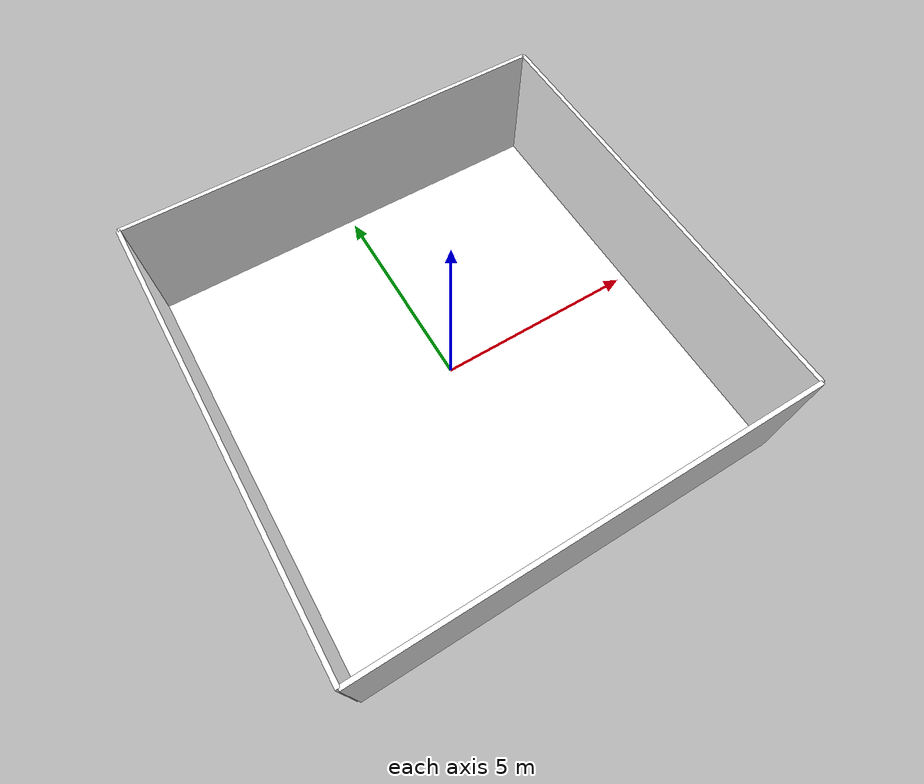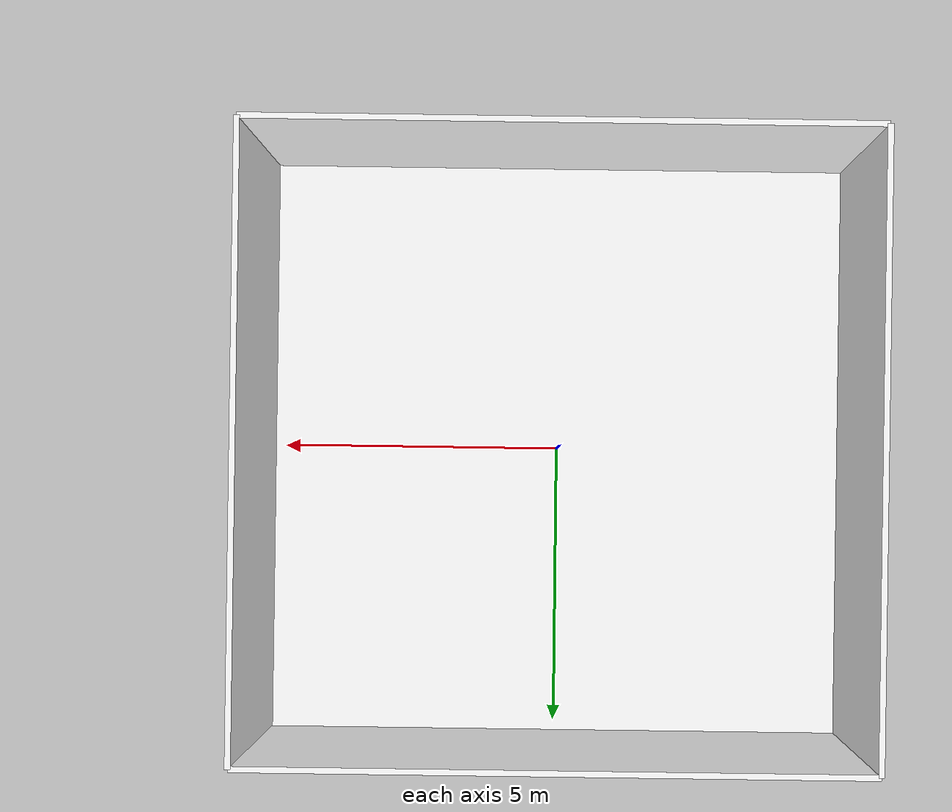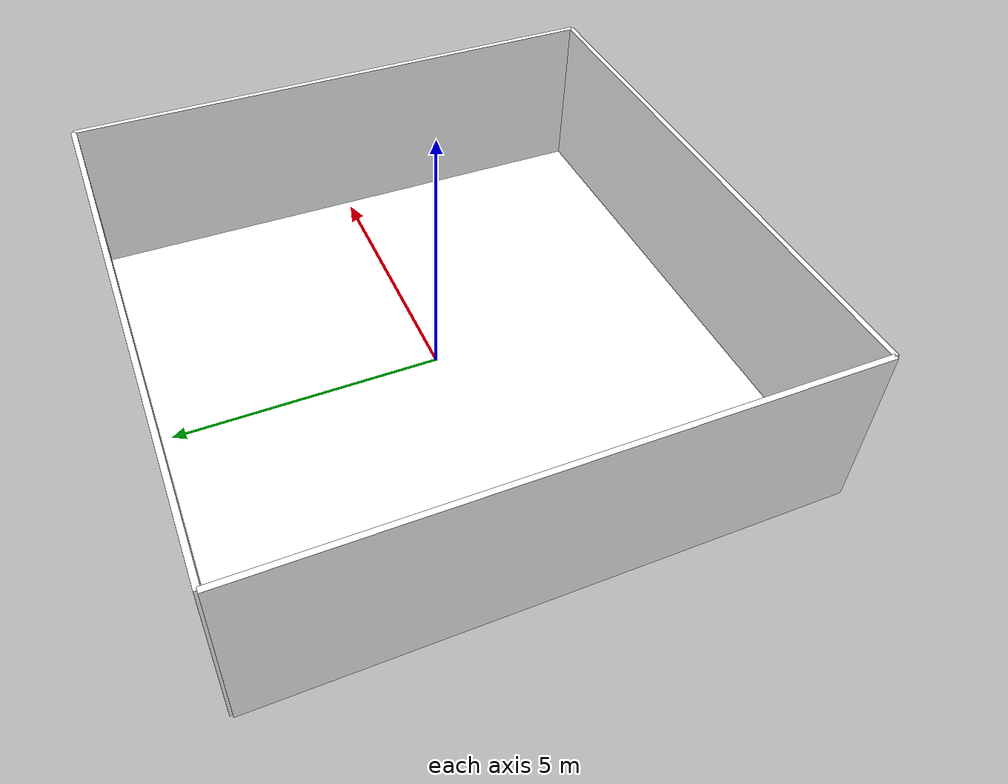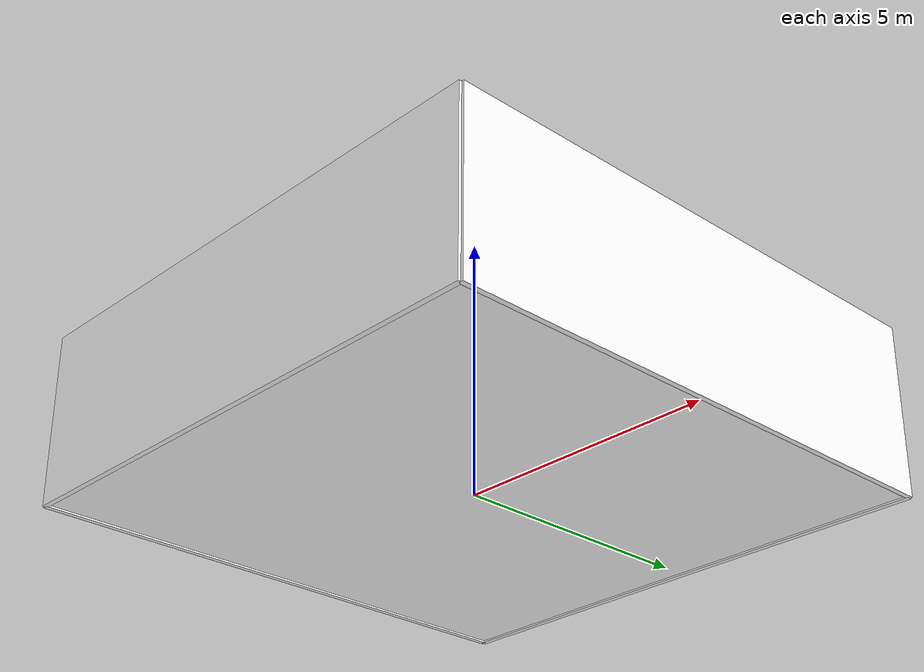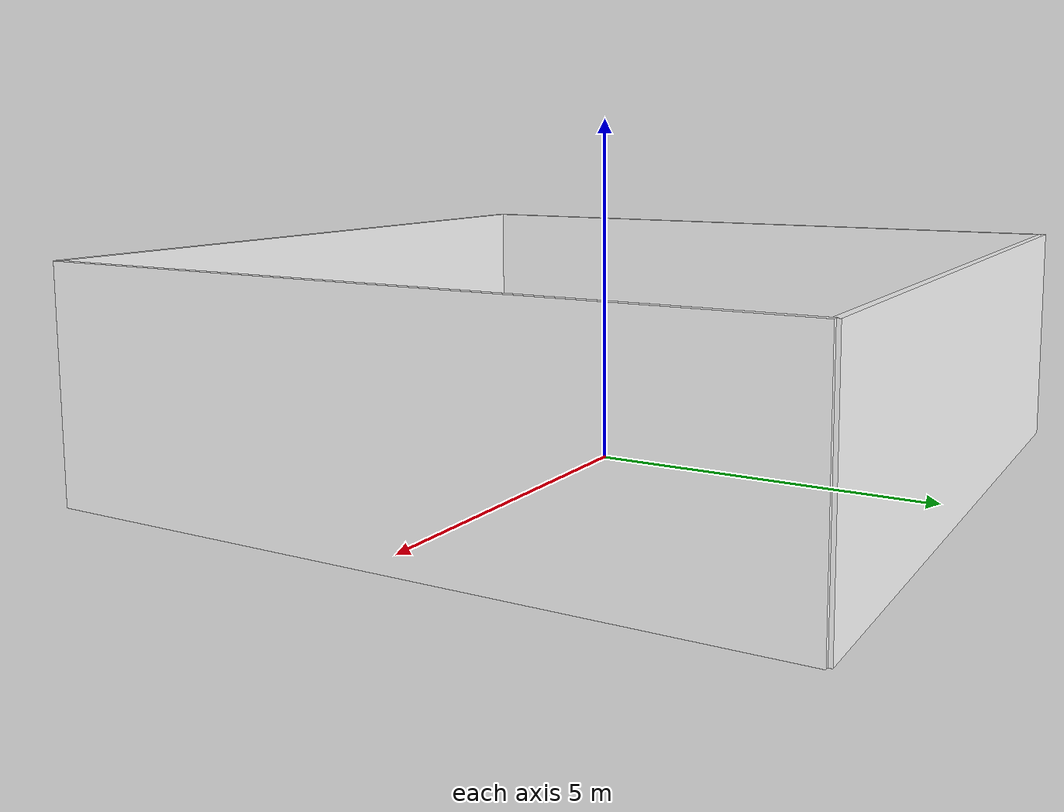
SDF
<?xml version="1.0" ?>
<sdf version="1.6">
  <model name="jamstec_pool">
    <include>
      <uri>model://pool_wall.sdf</uri>
      <static>true</static>
      <pose>5.25 0 0 0 0 1.57</pose>
      <name>pool_wall_n</name>
    </include>
    <include>
      <uri>model://pool_wall.sdf</uri>
      <static>true</static>
      <pose>-5.25 0 0 0 0 1.57</pose>
      <name>pool_wall_s</name>
    </include>
    <include>
      <uri>model://pool_wall.sdf</uri>
      <static>true</static>
      <pose>0 5.25 0 0 0 0</pose>
      <name>pool_wall_e</name>
    </include>
    <include>
      <uri>model://pool_wall.sdf</uri>
      <static>true</static>
      <pose>0 -5.25 0 0 0 0</pose>
      <name>pool_wall_w</name>
    </include>

    <link name="pool_grand_link">
      <pose>0.0 0 -0.05 0.0 0.0 0.0</pose>
      <collision name="wall_collision">
          <geometry>
            <box>
                <size>10.5 10.5 0.1</size>
            </box>
          </geometry>
      </collision>
      <visual name="pool_grand_visual">
        <geometry>
            <box>
                <size>10.5 10.5 0.1</size>
            </box>
        </geometry>
        <material>
          <diffuse>1.0 1.0 1.0</diffuse>
          <specular>1.0 1.0 1.0</specular>
          <pbr>
            <metal>
              <albedo_map>material/pool_grand.png</albedo_map>
              <normal_map>material/pool_grand.png</normal_map>
              <metalness_map>material/pool_grand.png</metalness_map>
              <roughness_map>material/pool_grand.png</roughness_map>
            </metal>
          </pbr>
          <script>
            <uri>material/</uri>
            <name>PoolGrandMaterial</name>
            <scale>1.0 0.1</scale>
          </script>
        </material>
      </visual>
    </link>
  </model>
</sdf>

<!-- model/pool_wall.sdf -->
<sdf version="1.6">
  <model name="pool_wall">
    <!-- weight -->
    <link name="pool_wall_link">
      <pose>0.0 0 1.515 0.0 0.0 0.0</pose>
      <collision name="wall_collision">
          <geometry>
            <box>
                <size>10.5 0.1 3.3</size>
            </box>
          </geometry>
      </collision>
      <visual name="pool_wall_visual">
        <geometry>
            <box>
                <size>10.5 0.1 3.3</size>
            </box>
        </geometry>
        <material>
          <diffuse>1.0 1.0 1.0</diffuse>
          <specular>1.0 1.0 1.0</specular>
          <pbr>
            <metal>
              <albedo_map>material/pool_wall.png</albedo_map>
              <normal_map>material/pool_wall.png</normal_map>
              <metalness_map>material/pool_wall.png</metalness_map>
              <roughness_map>material/pool_wall.png</roughness_map>
            </metal>
          </pbr>
          <script>
            <uri>material/</uri>
            <name>PoolWallMaterial</name>
            <scale>1.0 0.1</scale>
          </script>
        </material>
      </visual>
    </link>
  </model>
</sdf>
